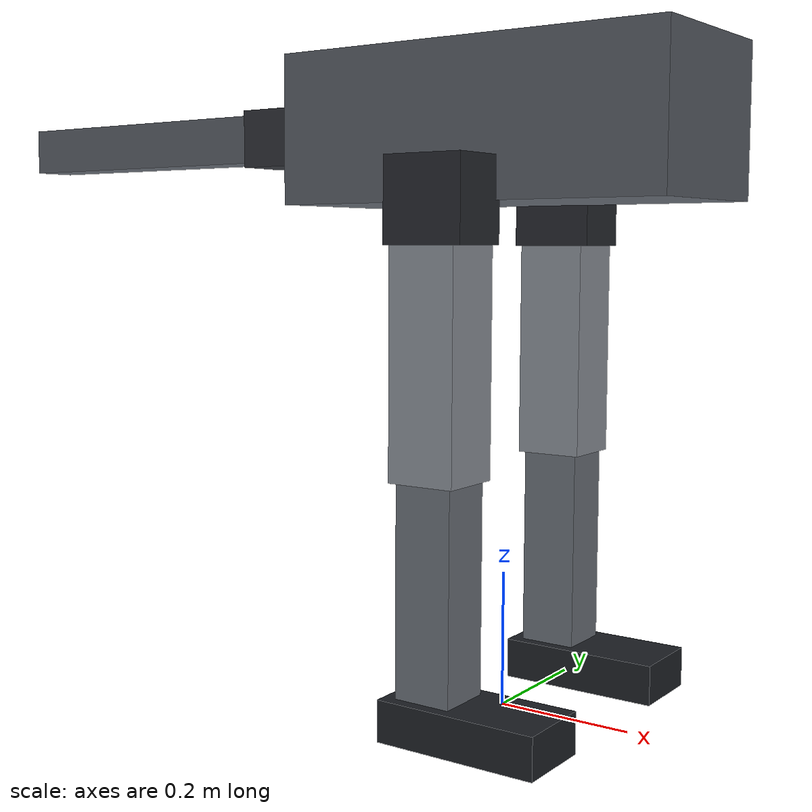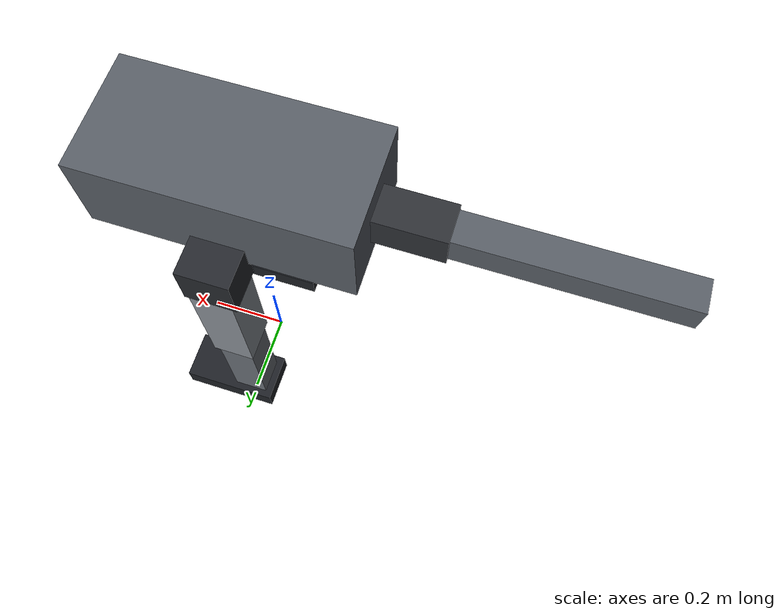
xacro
<?xml version="1.0"?>

<robot
  xmlns:xacro="http://www.ros.org/wiki/xacro"
  name="raptor">

  <!-- Bench fixture is explicitly opt-in and never a standing validation. -->
  <xacro:arg name="test_fixture" default="false"/>
  <xacro:arg name="detailed_visuals" default="false"/>
  <xacro:arg name="sensors" default="false"/>
  <xacro:arg name="passive_toes" default="false"/>
  <xacro:arg name="toe_stiffness_scale" default="1.0"/>
  <xacro:property name="toe_stiffness_scale" value="$(arg toe_stiffness_scale)"/>
  <xacro:arg name="crouched_start" default="false"/>
  <xacro:arg name="crouch_hip_pitch" default="-0.15"/>
  <xacro:property name="crouch_hip" value="$(arg crouch_hip_pitch)"/>
  <!-- Leg proportions (m). Link inertias below are still literal values for these lengths. -->
  <xacro:arg name="leg_design" default="legacy"/>
  <!-- Unknown values fail with a KeyError instead of silently picking a design. -->
  <xacro:property name="legacy" value="${dict(legacy=True, digitigrade=False, digitigrade_low=False)['$(arg leg_design)']}"/>
  <xacro:property name="low" value="${'$(arg leg_design)' == 'digitigrade_low'}"/>
  <!-- ankle_roll (digitigrade designs only): adds left/right ankle roll, 12 active DOF (user decision
       2026-09-29). Off by default so the 10-DOF evidence stays reproducible. -->
  <xacro:arg name="ankle_roll" default="false"/>
  <xacro:property name="ankle_roll" value="${'$(arg ankle_roll)' == 'true'}"/>
  <xacro:property name="ankle_roll_limit" value="0.50"/>
  <xacro:arg name="sole_shape" default="flat"/>
  <xacro:property name="sole_shape" value="${dict(flat='flat', rocker='rocker')['$(arg sole_shape)']}"/>
  <xacro:if value="${ankle_roll and legacy}"><xacro:ERROR_ankle_roll_needs_a_digitigrade_leg_design/></xacro:if>
  <xacro:property name="hip_drop" value="${0.06 if low else 0.12}"/>
  <xacro:arg name="ankle_pitch_limit" default="0"/>
  <xacro:property name="ankle_limit" value="${float('$(arg ankle_pitch_limit)') if float('$(arg ankle_pitch_limit)') > 0 else (0.95 if low else 0.70)}"/>
  <xacro:property name="toe_splay" value="${0.35 if low else 0.12}"/>
  <xacro:property name="thigh_length" value="${0.32 if legacy else 0.26}"/>
  <xacro:property name="shin_length" value="0.30"/>
  <!-- Legacy inertias are the original literals; digitigrade uses the box formula. -->
  <xacro:property name="thigh_ixx" value="${0.0140 if legacy else 1.5*(0.10**2+thigh_length**2)/12}"/>
  <!-- Tail link: legacy 0.50 m; digitigrade 0.95 m (longer, slimmer, same 0.8 kg; COM moves ~1 cm aft). -->
  <xacro:property name="tail_length" value="${0.50 if legacy else 0.95}"/>
  <xacro:property name="tail_width" value="${0.075 if legacy else 0.065}"/>
  <xacro:property name="tail_ixx" value="${0.0008 if legacy else 0.8*2*tail_width**2/12}"/>
  <xacro:property name="tail_iyy" value="${0.0169 if legacy else 0.8*(tail_length**2+tail_width**2)/12}"/>
  <xacro:property name="shin_ixx" value="${0.0089 if legacy else 1.1*(0.085**2+shin_length**2)/12}"/>
  <!-- Legacy thigh/shin meshes fit only the legacy lengths. -->
  <xacro:property name="detailed" value="${'$(arg detailed_visuals)' == 'true'}"/>
  <!-- legacy_detail: original DAE visuals. dg_detail: per-link Morphloom GLBs (modeling/morphloom). -->
  <xacro:property name="legacy_detail" value="${detailed and legacy}"/>
  <xacro:property name="dg_detail" value="${detailed and not legacy}"/>
  <xacro:macro name="dg_visual" params="link">
    <xacro:if value="${dg_detail}"><visual><origin rpy="${pi/2} 0 0"/><geometry><mesh filename="package://raptor_description/meshes/${'digitigrade_low' if low else 'digitigrade'}/${link}.glb"/></geometry></visual></xacro:if>
  </xacro:macro>
  <xacro:include filename="passive_toes.xacro"/>
  <xacro:include filename="digitigrade_foot.xacro"/>
  <!-- crouched_start knee; the ankle keeps the sole level (hip + knee + ankle = 0). -->
  <xacro:property name="crouch_knee" value="${0.4 if legacy else (1.65 if low else 0.5)}"/>
  <xacro:if value="$(arg sensors)">
    <gazebo reference="base_link">
      <sensor name="body_imu" type="imu">
        <always_on>true</always_on><update_rate>50</update_rate>
        <topic>/raptor/imu</topic>
        <imu><orientation_reference_frame><localization>ENU</localization></orientation_reference_frame></imu>
      </sensor>
      <sensor name="front_rgbd" type="rgbd_camera">
        <pose>0.42 0 0.04 0 0 0</pose>
        <always_on>true</always_on><update_rate>5</update_rate>
        <topic>/raptor/camera</topic>
        <camera>
          <horizontal_fov>1.05</horizontal_fov>
          <image><width>320</width><height>240</height><format>R8G8B8</format></image>
          <clip><near>0.05</near><far>20</far></clip>
          <depth_camera><clip><near>0.05</near><far>20</far></clip></depth_camera>
        </camera>
      </sensor>
    </gazebo>
    <xacro:macro name="foot_contact" params="side">
      <gazebo reference="${side}_foot_link">
        <sensor name="${side}_foot_contact" type="contact">
          <always_on>true</always_on><update_rate>50</update_rate>
          <topic>/raptor/${side}_foot/contact</topic>
          <contact>
            <collision>${side}_foot_link_collision</collision>
            <topic>/raptor/${side}_foot/contact</topic>
          </contact>
        </sensor>
      </gazebo>
    </xacro:macro>
    <xacro:foot_contact side="left"/><xacro:foot_contact side="right"/>
  </xacro:if>
  <xacro:if value="$(arg test_fixture)">
    <link name="world"/>
    <joint name="test_fixture_joint" type="fixed">
      <parent link="world"/><child link="base_root"/>
      <origin xyz="0 0 0.25"/>
    </joint>
  </xacro:if>

    <!-- Dummy root link for KDL -->
  <link name="base_root"/>

  <joint name="base_root_joint" type="fixed">
    <parent link="base_root"/>
    <child link="base_link"/>
    <origin xyz="0 0 0.85" rpy="0 0 0"/>
  </joint>

  <!--
    Raptor prototype
    Step 1: body only
  -->

  <link name="base_link">
    <xacro:dg_visual link="base_link"/>

    <!-- 화면에 보이는 외형 -->
    <xacro:unless value="${detailed}"><visual>
      <origin xyz="0 0 0" rpy="0 0 0"/>

      <geometry>
        <box size="0.60 0.28 0.22"/>
      </geometry>

      <material name="body_gray">
        <color rgba="0.35 0.37 0.40 1.0"/>
      </material>
    </visual></xacro:unless>
    <xacro:if value="${legacy_detail}">
      <visual><geometry><mesh filename="package://raptor_description/meshes/raptor/base_link__graphite.dae"/></geometry><material name="raptor_graphite"><color rgba="0.065 0.075 0.085 1"/></material></visual>
      <visual><geometry><mesh filename="package://raptor_description/meshes/raptor/base_link__titanium.dae"/></geometry><material name="raptor_titanium"><color rgba="0.36 0.4 0.43 1"/></material></visual>
      <visual><geometry><mesh filename="package://raptor_description/meshes/raptor/base_link__ivory.dae"/></geometry><material name="raptor_ivory"><color rgba="0.72 0.72 0.65 1"/></material></visual>
      <visual><geometry><mesh filename="package://raptor_description/meshes/raptor/base_link__copper.dae"/></geometry><material name="raptor_copper"><color rgba="0.66 0.29 0.08 1"/></material></visual>
      <visual><geometry><mesh filename="package://raptor_description/meshes/raptor/base_link__rubber.dae"/></geometry><material name="raptor_rubber"><color rgba="0.025 0.028 0.032 1"/></material></visual>
      <visual><geometry><mesh filename="package://raptor_description/meshes/raptor/base_link__lens.dae"/></geometry><material name="raptor_lens"><color rgba="0.05 0.26 0.33 1"/></material></visual>
    </xacro:if>

    <!-- Gazebo가 충돌 계산할 때 사용하는 모양 -->
    <collision>
      <origin xyz="0 0 0" rpy="0 0 0"/>

      <geometry>
        <box size="0.60 0.28 0.22"/>
      </geometry>
    </collision>

    <!-- 무게와 회전 특성 -->
    <inertial>
      <origin xyz="0 0 0" rpy="0 0 0"/>

      <mass value="8.0"/>

      <inertia
        ixx="0.0843"
        ixy="0.0"
        ixz="0.0"
        iyy="0.2691"
        iyz="0.0"
        izz="0.2923"/>
    </inertial>

    </link>
    <!-- LEFT HIP ROLL -->
    <!-- 다리를 좌우로 벌리고 모으는 첫 번째 관절 -->

    <link name="left_hip_roll_link">
    <xacro:dg_visual link="left_hip_roll_link"/>

    <xacro:unless value="${detailed}"><visual>
      <origin xyz="0 0 -0.06" rpy="0 0 0"/>

      <geometry>
        <box size="0.12 0.10 0.12"/>
      </geometry>

      <material name="joint_dark">
        <color rgba="0.15 0.16 0.18 1.0"/>
      </material>
    </visual></xacro:unless>
    <xacro:if value="${legacy_detail}">
      <visual><geometry><mesh filename="package://raptor_description/meshes/raptor/left_hip_roll_link__graphite.dae"/></geometry><material name="raptor_graphite"><color rgba="0.065 0.075 0.085 1"/></material></visual>
      <visual><geometry><mesh filename="package://raptor_description/meshes/raptor/left_hip_roll_link__titanium.dae"/></geometry><material name="raptor_titanium"><color rgba="0.36 0.4 0.43 1"/></material></visual>
      <visual><geometry><mesh filename="package://raptor_description/meshes/raptor/left_hip_roll_link__ivory.dae"/></geometry><material name="raptor_ivory"><color rgba="0.72 0.72 0.65 1"/></material></visual>
    </xacro:if>

    <collision>
      <origin xyz="0 0 -0.06" rpy="0 0 0"/>

      <geometry>
        <box size="0.12 0.10 0.12"/>
      </geometry>
    </collision>

    <inertial>
      <origin xyz="0 0 -0.06" rpy="0 0 0"/>

      <mass value="0.8"/>

      <inertia
        ixx="0.0016"
        ixy="0.0"
        ixz="0.0"
        iyy="0.0016"
        iyz="0.0"
        izz="0.0013"/>
    </inertial>

  </link>

  <joint name="left_hip_roll_joint" type="revolute">

    <parent link="base_link"/>
    <child link="left_hip_roll_link"/>

    <!-- 몸통 왼쪽 아래에 관절 배치 -->
    <origin xyz="0 0.18 -0.05" rpy="0 0 0"/>

    <!-- X축 회전 = Hip Roll -->
    <axis xyz="1 0 0"/>

    <limit
      lower="-0.50"
      upper="0.50"
      effort="80"
      velocity="2.0"/>

  </joint>
  <!-- LEFT HIP PITCH + THIGH -->
  <!-- 다리를 앞뒤로 움직이는 두 번째 관절 -->

  <link name="left_thigh_link">
    <xacro:dg_visual link="left_thigh_link"/>

    <xacro:unless value="${detailed}"><visual>
      <!-- 관절에서 아래쪽으로 허벅지가 내려감 -->
      <origin xyz="0 0 ${-thigh_length/2}" rpy="0 0 0"/>

      <geometry>
        <box size="0.10 0.10 ${thigh_length}"/>
      </geometry>

      <material name="leg_gray">
        <color rgba="0.55 0.57 0.60 1.0"/>
      </material>
    </visual></xacro:unless>
    <xacro:if value="${legacy_detail}">
      <visual><geometry><mesh filename="package://raptor_description/meshes/raptor/left_thigh_link__graphite.dae"/></geometry><material name="raptor_graphite"><color rgba="0.065 0.075 0.085 1"/></material></visual>
      <visual><geometry><mesh filename="package://raptor_description/meshes/raptor/left_thigh_link__titanium.dae"/></geometry><material name="raptor_titanium"><color rgba="0.36 0.4 0.43 1"/></material></visual>
      <visual><geometry><mesh filename="package://raptor_description/meshes/raptor/left_thigh_link__ivory.dae"/></geometry><material name="raptor_ivory"><color rgba="0.72 0.72 0.65 1"/></material></visual>
      <visual><geometry><mesh filename="package://raptor_description/meshes/raptor/left_thigh_link__copper.dae"/></geometry><material name="raptor_copper"><color rgba="0.66 0.29 0.08 1"/></material></visual>
    </xacro:if>

    <collision>
      <origin xyz="0 0 ${-thigh_length/2}" rpy="0 0 0"/>

      <geometry>
        <box size="0.10 0.10 ${thigh_length}"/>
      </geometry>
    </collision>

    <inertial>
      <origin xyz="0 0 ${-thigh_length/2}" rpy="0 0 0"/>

      <mass value="1.5"/>

      <inertia
        ixx="${thigh_ixx}"
        ixy="0.0"
        ixz="0.0"
        iyy="${thigh_ixx}"
        iyz="0.0"
        izz="0.0025"/>
    </inertial>

  </link>

  <joint name="left_hip_pitch_joint" type="revolute">

    <parent link="left_hip_roll_link"/>
    <child link="left_thigh_link"/>

    <!-- Hip Roll 블록 아래쪽에 Hip Pitch 배치 -->
    <origin xyz="0 0 ${-hip_drop}" rpy="0 0 0"/>

    <!-- Y축 회전 = 다리 앞뒤 움직임 -->
    <axis xyz="0 1 0"/>

    <limit
      lower="-1.20"
      upper="0.80"
      effort="100"
      velocity="2.5"/>

  </joint>
  <!-- LEFT KNEE PITCH + SHIN -->
  <!-- 무릎을 굽히고 펴는 세 번째 관절 -->

  <link name="left_shin_link">
    <xacro:dg_visual link="left_shin_link"/>

    <xacro:unless value="${detailed}"><visual>
      <!-- 무릎 아래로 종아리가 내려감 -->
      <origin xyz="0 0 ${-shin_length/2}" rpy="0 0 0"/>

      <geometry>
        <box size="0.085 0.085 ${shin_length}"/>
      </geometry>

      <material name="shin_gray">
        <color rgba="0.42 0.44 0.47 1.0"/>
      </material>
    </visual></xacro:unless>
    <xacro:if value="${legacy_detail}">
      <visual><geometry><mesh filename="package://raptor_description/meshes/raptor/left_shin_link__graphite.dae"/></geometry><material name="raptor_graphite"><color rgba="0.065 0.075 0.085 1"/></material></visual>
      <visual><geometry><mesh filename="package://raptor_description/meshes/raptor/left_shin_link__titanium.dae"/></geometry><material name="raptor_titanium"><color rgba="0.36 0.4 0.43 1"/></material></visual>
      <visual><geometry><mesh filename="package://raptor_description/meshes/raptor/left_shin_link__ivory.dae"/></geometry><material name="raptor_ivory"><color rgba="0.72 0.72 0.65 1"/></material></visual>
    </xacro:if>

    <collision>
      <origin xyz="0 0 ${-shin_length/2}" rpy="0 0 0"/>

      <geometry>
        <box size="0.085 0.085 ${shin_length}"/>
      </geometry>
    </collision>

    <inertial>
      <origin xyz="0 0 ${-shin_length/2}" rpy="0 0 0"/>

      <mass value="1.1"/>

      <inertia
        ixx="${shin_ixx}"
        ixy="0.0"
        ixz="0.0"
        iyy="${shin_ixx}"
        iyz="0.0"
        izz="0.0013"/>
    </inertial>

  </link>

  <joint name="left_knee_pitch_joint" type="revolute">

    <parent link="left_thigh_link"/>
    <child link="left_shin_link"/>

    <!-- 허벅지 끝 = 무릎 위치 -->
    <origin xyz="0 0 ${-thigh_length}" rpy="0 0 0"/>

    <!-- Y축 회전 = 무릎 굽힘 -->
    <axis xyz="0 1 0"/>

    <!--
      0 rad = 다리를 편 상태
      약 126도까지 굽힘 허용
    -->
    <limit
      lower="0.0"
      upper="2.20"
      effort="120"
      velocity="3.0"/>

  </joint>
  <!-- LEFT ANKLE PITCH + FOOT -->
  <!-- 발목을 앞뒤로 움직이는 네 번째 관절 -->

  <xacro:if value="${legacy}">
  <xacro:unless value="$(arg passive_toes)">
  <link name="left_foot_link">

    <xacro:unless value="${detailed}"><visual>
      <!-- 발목 기준으로 발을 약간 앞으로 배치 -->
      <origin xyz="0.06 0 -0.03" rpy="0 0 0"/>

      <geometry>
        <box size="0.24 0.12 0.06"/>
      </geometry>

      <material name="foot_dark">
        <color rgba="0.12 0.13 0.15 1.0"/>
      </material>
    </visual></xacro:unless>
    <xacro:if value="${legacy_detail}">
      <visual><geometry><mesh filename="package://raptor_description/meshes/raptor/left_foot_link__graphite.dae"/></geometry><material name="raptor_graphite"><color rgba="0.065 0.075 0.085 1"/></material></visual>
      <visual><geometry><mesh filename="package://raptor_description/meshes/raptor/left_foot_link__titanium.dae"/></geometry><material name="raptor_titanium"><color rgba="0.36 0.4 0.43 1"/></material></visual>
      <visual><geometry><mesh filename="package://raptor_description/meshes/raptor/left_foot_link__ivory.dae"/></geometry><material name="raptor_ivory"><color rgba="0.72 0.72 0.65 1"/></material></visual>
      <visual><geometry><mesh filename="package://raptor_description/meshes/raptor/left_foot_link__rubber.dae"/></geometry><material name="raptor_rubber"><color rgba="0.025 0.028 0.032 1"/></material></visual>
    </xacro:if>

    <collision>
      <origin xyz="0.06 0 -0.03" rpy="0 0 0"/>

      <geometry>
        <box size="0.24 0.12 0.06"/>
      </geometry>
    </collision>

    <inertial>
      <origin xyz="0.06 0 -0.03" rpy="0 0 0"/>

      <mass value="0.6"/>

      <inertia
        ixx="0.0009"
        ixy="0.0"
        ixz="0.0"
        iyy="0.0031"
        iyz="0.0"
        izz="0.0036"/>
    </inertial>

  </link>
  </xacro:unless>
  <xacro:if value="$(arg passive_toes)"><xacro:passive_foot side="left"/></xacro:if>
  </xacro:if>
  <xacro:unless value="${legacy}"><xacro:digitigrade_foot side="left" passive="$(arg passive_toes)"/></xacro:unless>

  <joint name="left_ankle_pitch_joint" type="revolute">

    <parent link="left_shin_link"/>
    <child link="${'left_metatarsus_link' if ankle_roll else 'left_foot_link'}"/>

    <!-- 종아리 끝부분에 발목 배치 -->
    <origin xyz="0 0 ${-shin_length}" rpy="0 0 0"/>

    <!-- Y축 회전 = 발 앞뒤 기울임 -->
    <axis xyz="0 1 0"/>

    <limit
      lower="${-ankle_limit}"
      upper="${ankle_limit}"
      effort="80"
      velocity="2.5"/>

  </joint>
  <!-- RIGHT LEG : 4 DOF                                     -->
  <!-- Hip Roll + Hip Pitch + Knee Pitch + Ankle Pitch       -->

  <!-- 1. RIGHT HIP ROLL LINK -->

  <link name="right_hip_roll_link">
    <xacro:dg_visual link="right_hip_roll_link"/>

    <xacro:unless value="${detailed}"><visual>
      <origin xyz="0 0 -0.06" rpy="0 0 0"/>

      <geometry>
        <box size="0.12 0.10 0.12"/>
      </geometry>

      <material name="right_joint_dark">
        <color rgba="0.15 0.16 0.18 1.0"/>
      </material>
    </visual></xacro:unless>
    <xacro:if value="${legacy_detail}">
      <visual><geometry><mesh filename="package://raptor_description/meshes/raptor/right_hip_roll_link__graphite.dae"/></geometry><material name="raptor_graphite"><color rgba="0.065 0.075 0.085 1"/></material></visual>
      <visual><geometry><mesh filename="package://raptor_description/meshes/raptor/right_hip_roll_link__titanium.dae"/></geometry><material name="raptor_titanium"><color rgba="0.36 0.4 0.43 1"/></material></visual>
      <visual><geometry><mesh filename="package://raptor_description/meshes/raptor/right_hip_roll_link__ivory.dae"/></geometry><material name="raptor_ivory"><color rgba="0.72 0.72 0.65 1"/></material></visual>
    </xacro:if>

    <collision>
      <origin xyz="0 0 -0.06" rpy="0 0 0"/>

      <geometry>
        <box size="0.12 0.10 0.12"/>
      </geometry>
    </collision>

    <inertial>
      <origin xyz="0 0 -0.06" rpy="0 0 0"/>

      <mass value="0.8"/>

      <inertia
        ixx="0.0016"
        ixy="0.0"
        ixz="0.0"
        iyy="0.0016"
        iyz="0.0"
        izz="0.0013"/>
    </inertial>

  </link>

  <joint name="right_hip_roll_joint" type="revolute">

    <parent link="base_link"/>
    <child link="right_hip_roll_link"/>

    <!-- 오른쪽은 Y 음수 방향 -->
    <origin xyz="0 -0.18 -0.05" rpy="0 0 0"/>

    <!--
      오른쪽은 왼쪽과 반대 방향의 X축을 사용.
      따라서 양쪽에서 +값을 줬을 때 다리가 바깥으로 벌어지게 함.
    -->
    <axis xyz="-1 0 0"/>

    <limit
      lower="-0.50"
      upper="0.50"
      effort="80"
      velocity="2.0"/>

  </joint>

  <!-- 2. RIGHT HIP PITCH + THIGH -->

  <link name="right_thigh_link">
    <xacro:dg_visual link="right_thigh_link"/>

    <xacro:unless value="${detailed}"><visual>
      <origin xyz="0 0 ${-thigh_length/2}" rpy="0 0 0"/>

      <geometry>
        <box size="0.10 0.10 ${thigh_length}"/>
      </geometry>

      <material name="right_leg_gray">
        <color rgba="0.55 0.57 0.60 1.0"/>
      </material>
    </visual></xacro:unless>
    <xacro:if value="${legacy_detail}">
      <visual><geometry><mesh filename="package://raptor_description/meshes/raptor/right_thigh_link__graphite.dae"/></geometry><material name="raptor_graphite"><color rgba="0.065 0.075 0.085 1"/></material></visual>
      <visual><geometry><mesh filename="package://raptor_description/meshes/raptor/right_thigh_link__titanium.dae"/></geometry><material name="raptor_titanium"><color rgba="0.36 0.4 0.43 1"/></material></visual>
      <visual><geometry><mesh filename="package://raptor_description/meshes/raptor/right_thigh_link__ivory.dae"/></geometry><material name="raptor_ivory"><color rgba="0.72 0.72 0.65 1"/></material></visual>
      <visual><geometry><mesh filename="package://raptor_description/meshes/raptor/right_thigh_link__copper.dae"/></geometry><material name="raptor_copper"><color rgba="0.66 0.29 0.08 1"/></material></visual>
    </xacro:if>

    <collision>
      <origin xyz="0 0 ${-thigh_length/2}" rpy="0 0 0"/>

      <geometry>
        <box size="0.10 0.10 ${thigh_length}"/>
      </geometry>
    </collision>

    <inertial>
      <origin xyz="0 0 ${-thigh_length/2}" rpy="0 0 0"/>

      <mass value="1.5"/>

      <inertia
        ixx="${thigh_ixx}"
        ixy="0.0"
        ixz="0.0"
        iyy="${thigh_ixx}"
        iyz="0.0"
        izz="0.0025"/>
    </inertial>

  </link>

  <joint name="right_hip_pitch_joint" type="revolute">

    <parent link="right_hip_roll_link"/>
    <child link="right_thigh_link"/>

    <origin xyz="0 0 ${-hip_drop}" rpy="0 0 0"/>

    <axis xyz="0 1 0"/>

    <limit
      lower="-1.20"
      upper="0.80"
      effort="100"
      velocity="2.5"/>

  </joint>

  <!-- 3. RIGHT KNEE PITCH + SHIN -->

  <link name="right_shin_link">
    <xacro:dg_visual link="right_shin_link"/>

    <xacro:unless value="${detailed}"><visual>
      <origin xyz="0 0 ${-shin_length/2}" rpy="0 0 0"/>

      <geometry>
        <box size="0.085 0.085 ${shin_length}"/>
      </geometry>

      <material name="right_shin_gray">
        <color rgba="0.42 0.44 0.47 1.0"/>
      </material>
    </visual></xacro:unless>
    <xacro:if value="${legacy_detail}">
      <visual><geometry><mesh filename="package://raptor_description/meshes/raptor/right_shin_link__graphite.dae"/></geometry><material name="raptor_graphite"><color rgba="0.065 0.075 0.085 1"/></material></visual>
      <visual><geometry><mesh filename="package://raptor_description/meshes/raptor/right_shin_link__titanium.dae"/></geometry><material name="raptor_titanium"><color rgba="0.36 0.4 0.43 1"/></material></visual>
      <visual><geometry><mesh filename="package://raptor_description/meshes/raptor/right_shin_link__ivory.dae"/></geometry><material name="raptor_ivory"><color rgba="0.72 0.72 0.65 1"/></material></visual>
    </xacro:if>

    <collision>
      <origin xyz="0 0 ${-shin_length/2}" rpy="0 0 0"/>

      <geometry>
        <box size="0.085 0.085 ${shin_length}"/>
      </geometry>
    </collision>

    <inertial>
      <origin xyz="0 0 ${-shin_length/2}" rpy="0 0 0"/>

      <mass value="1.1"/>

      <inertia
        ixx="${shin_ixx}"
        ixy="0.0"
        ixz="0.0"
        iyy="${shin_ixx}"
        iyz="0.0"
        izz="0.0013"/>
    </inertial>

  </link>

  <joint name="right_knee_pitch_joint" type="revolute">

    <parent link="right_thigh_link"/>
    <child link="right_shin_link"/>

    <origin xyz="0 0 ${-thigh_length}" rpy="0 0 0"/>

    <axis xyz="0 1 0"/>

    <limit
      lower="0.0"
      upper="2.20"
      effort="120"
      velocity="3.0"/>

  </joint>

  <!-- 4. RIGHT ANKLE PITCH + FOOT -->

  <xacro:if value="${legacy}">
  <xacro:unless value="$(arg passive_toes)">
  <link name="right_foot_link">

    <xacro:unless value="${detailed}"><visual>
      <origin xyz="0.06 0 -0.03" rpy="0 0 0"/>

      <geometry>
        <box size="0.24 0.12 0.06"/>
      </geometry>

      <material name="right_foot_dark">
        <color rgba="0.12 0.13 0.15 1.0"/>
      </material>
    </visual></xacro:unless>
    <xacro:if value="${legacy_detail}">
      <visual><geometry><mesh filename="package://raptor_description/meshes/raptor/right_foot_link__graphite.dae"/></geometry><material name="raptor_graphite"><color rgba="0.065 0.075 0.085 1"/></material></visual>
      <visual><geometry><mesh filename="package://raptor_description/meshes/raptor/right_foot_link__titanium.dae"/></geometry><material name="raptor_titanium"><color rgba="0.36 0.4 0.43 1"/></material></visual>
      <visual><geometry><mesh filename="package://raptor_description/meshes/raptor/right_foot_link__ivory.dae"/></geometry><material name="raptor_ivory"><color rgba="0.72 0.72 0.65 1"/></material></visual>
      <visual><geometry><mesh filename="package://raptor_description/meshes/raptor/right_foot_link__rubber.dae"/></geometry><material name="raptor_rubber"><color rgba="0.025 0.028 0.032 1"/></material></visual>
    </xacro:if>

    <collision>
      <origin xyz="0.06 0 -0.03" rpy="0 0 0"/>

      <geometry>
        <box size="0.24 0.12 0.06"/>
      </geometry>
    </collision>

    <inertial>
      <origin xyz="0.06 0 -0.03" rpy="0 0 0"/>

      <mass value="0.6"/>

      <inertia
        ixx="0.0009"
        ixy="0.0"
        ixz="0.0"
        iyy="0.0031"
        iyz="0.0"
        izz="0.0036"/>
    </inertial>

  </link>
  </xacro:unless>
  <xacro:if value="$(arg passive_toes)"><xacro:passive_foot side="right"/></xacro:if>
  </xacro:if>
  <xacro:unless value="${legacy}"><xacro:digitigrade_foot side="right" passive="$(arg passive_toes)"/></xacro:unless>

  <joint name="right_ankle_pitch_joint" type="revolute">

    <parent link="right_shin_link"/>
    <child link="${'right_metatarsus_link' if ankle_roll else 'right_foot_link'}"/>

    <origin xyz="0 0 ${-shin_length}" rpy="0 0 0"/>

    <axis xyz="0 1 0"/>

    <limit
      lower="${-ankle_limit}"
      upper="${ankle_limit}"
      effort="80"
      velocity="2.5"/>

  </joint>
  <!-- TAIL : 2 DOF                                         -->
  <!-- Tail Yaw + Tail Pitch                                 -->

  <!-- 9. TAIL YAW LINK -->
  <!-- 몸통 뒤쪽에서 좌우로 회전하는 꼬리 베이스 -->

  <link name="tail_yaw_link">
    <xacro:dg_visual link="tail_yaw_link"/>

    <xacro:unless value="${detailed}"><visual>
      <!-- 관절 기준 뒤쪽(-X)으로 꼬리 베이스가 뻗음 -->
      <origin xyz="-0.08 0 0" rpy="0 0 0"/>

      <geometry>
        <box size="0.16 0.09 0.09"/>
      </geometry>

      <material name="tail_dark">
        <color rgba="0.18 0.19 0.21 1.0"/>
      </material>
    </visual></xacro:unless>
    <xacro:if value="${legacy_detail}">
      <visual><geometry><mesh filename="package://raptor_description/meshes/raptor/tail_yaw_link__graphite.dae"/></geometry><material name="raptor_graphite"><color rgba="0.065 0.075 0.085 1"/></material></visual>
      <visual><geometry><mesh filename="package://raptor_description/meshes/raptor/tail_yaw_link__titanium.dae"/></geometry><material name="raptor_titanium"><color rgba="0.36 0.4 0.43 1"/></material></visual>
      <visual><geometry><mesh filename="package://raptor_description/meshes/raptor/tail_yaw_link__ivory.dae"/></geometry><material name="raptor_ivory"><color rgba="0.72 0.72 0.65 1"/></material></visual>
    </xacro:if>

    <collision>
      <origin xyz="-0.08 0 0" rpy="0 0 0"/>

      <geometry>
        <box size="0.16 0.09 0.09"/>
      </geometry>
    </collision>

    <inertial>
      <origin xyz="-0.08 0 0" rpy="0 0 0"/>

      <mass value="0.5"/>

      <inertia
        ixx="0.0007"
        ixy="0.0"
        ixz="0.0"
        iyy="0.0014"
        iyz="0.0"
        izz="0.0014"/>
    </inertial>

  </link>

  <joint name="tail_yaw_joint" type="revolute">

    <parent link="base_link"/>
    <child link="tail_yaw_link"/>

    <!-- 몸통 뒤쪽 끝에 꼬리 장착 -->
    <origin xyz="-0.30 0 0" rpy="0 0 0"/>

    <!-- Z축 회전 = 좌우 움직임 -->
    <axis xyz="0 0 1"/>

    <!-- 약 좌우 ±46도 -->
    <limit
      lower="-0.80"
      upper="0.80"
      effort="50"
      velocity="2.0"/>

  </joint>

  <!-- 10. TAIL PITCH + MAIN TAIL -->
  <!-- 꼬리를 위아래로 움직이는 관절 -->

  <link name="tail_link">
    <xacro:dg_visual link="tail_link"/>

    <xacro:unless value="${detailed}"><visual>
      <!-- Pitch 관절에서 뒤쪽으로 0.5m 뻗는 꼬리 -->
      <origin xyz="${-tail_length/2} 0 0" rpy="0 0 0"/>

      <geometry>
        <box size="${tail_length} ${tail_width} ${tail_width}"/>
      </geometry>

      <material name="tail_gray">
        <color rgba="0.35 0.37 0.40 1.0"/>
      </material>
    </visual></xacro:unless>
    <xacro:if value="${legacy_detail}">
      <visual><geometry><mesh filename="package://raptor_description/meshes/raptor/tail_link__graphite.dae"/></geometry><material name="raptor_graphite"><color rgba="0.065 0.075 0.085 1"/></material></visual>
      <visual><geometry><mesh filename="package://raptor_description/meshes/raptor/tail_link__titanium.dae"/></geometry><material name="raptor_titanium"><color rgba="0.36 0.4 0.43 1"/></material></visual>
      <visual><geometry><mesh filename="package://raptor_description/meshes/raptor/tail_link__ivory.dae"/></geometry><material name="raptor_ivory"><color rgba="0.72 0.72 0.65 1"/></material></visual>
      <visual><geometry><mesh filename="package://raptor_description/meshes/raptor/tail_link__copper.dae"/></geometry><material name="raptor_copper"><color rgba="0.66 0.29 0.08 1"/></material></visual>
    </xacro:if>

    <collision>
      <origin xyz="${-tail_length/2} 0 0" rpy="0 0 0"/>

      <geometry>
        <box size="${tail_length} ${tail_width} ${tail_width}"/>
      </geometry>
    </collision>

    <inertial>
      <origin xyz="${-tail_length/2} 0 0" rpy="0 0 0"/>

      <mass value="0.8"/>

      <inertia
        ixx="${tail_ixx}"
        ixy="0.0"
        ixz="0.0"
        iyy="${tail_iyy}"
        iyz="0.0"
        izz="${tail_iyy}"/>
    </inertial>

  </link>

  <joint name="tail_pitch_joint" type="revolute">

    <parent link="tail_yaw_link"/>
    <child link="tail_link"/>

    <!-- 꼬리 베이스 끝 -->
    <origin xyz="-0.16 0 0" rpy="0 0 0"/>

    <!-- Y축 회전 = 위 / 아래 -->
    <axis xyz="0 1 0"/>

    <limit
      lower="-0.60"
      upper="0.60"
      effort="50"
      velocity="2.0"/>

  </joint>
  <!-- ROS 2 CONTROL : 10 DOF                                -->

  <ros2_control name="GazeboSimSystem" type="system">

    <hardware>
      <plugin>gz_ros2_control/GazeboSimSystem</plugin>
    </hardware>

    <!-- LEFT LEG -->

    <joint name="left_hip_roll_joint">
      <command_interface name="position"/>
      <state_interface name="position"/>
      <state_interface name="velocity"/>
      <state_interface name="effort"/>
    </joint>

    <joint name="left_hip_pitch_joint">
      <command_interface name="position"/>
      <state_interface name="position"><xacro:if value="$(arg crouched_start)"><param name="initial_value">${crouch_hip}</param></xacro:if></state_interface>
      <state_interface name="velocity"/>
      <state_interface name="effort"/>
    </joint>

    <joint name="left_knee_pitch_joint">
      <command_interface name="position"/>
      <state_interface name="position"><xacro:if value="$(arg crouched_start)"><param name="initial_value">${crouch_knee}</param></xacro:if></state_interface>
      <state_interface name="velocity"/>
      <state_interface name="effort"/>
    </joint>

    <joint name="left_ankle_pitch_joint">
      <command_interface name="position"/>
      <state_interface name="position"><xacro:if value="$(arg crouched_start)"><param name="initial_value">${-crouch_knee-crouch_hip}</param></xacro:if></state_interface>
      <state_interface name="velocity"/>
      <state_interface name="effort"/>
    </joint>
    <xacro:if value="${ankle_roll}">
    <joint name="left_ankle_roll_joint">
      <command_interface name="position"/>
      <state_interface name="position"/>
      <state_interface name="velocity"/>
      <state_interface name="effort"/>
    </joint>
    </xacro:if>

    <!-- RIGHT LEG -->

    <joint name="right_hip_roll_joint">
      <command_interface name="position"/>
      <state_interface name="position"/>
      <state_interface name="velocity"/>
      <state_interface name="effort"/>
    </joint>

    <joint name="right_hip_pitch_joint">
      <command_interface name="position"/>
      <state_interface name="position"><xacro:if value="$(arg crouched_start)"><param name="initial_value">${crouch_hip}</param></xacro:if></state_interface>
      <state_interface name="velocity"/>
      <state_interface name="effort"/>
    </joint>

    <joint name="right_knee_pitch_joint">
      <command_interface name="position"/>
      <state_interface name="position"><xacro:if value="$(arg crouched_start)"><param name="initial_value">${crouch_knee}</param></xacro:if></state_interface>
      <state_interface name="velocity"/>
      <state_interface name="effort"/>
    </joint>

    <joint name="right_ankle_pitch_joint">
      <command_interface name="position"/>
      <state_interface name="position"><xacro:if value="$(arg crouched_start)"><param name="initial_value">${-crouch_knee-crouch_hip}</param></xacro:if></state_interface>
      <state_interface name="velocity"/>
      <state_interface name="effort"/>
    </joint>
    <xacro:if value="${ankle_roll}">
    <joint name="right_ankle_roll_joint">
      <command_interface name="position"/>
      <state_interface name="position"/>
      <state_interface name="velocity"/>
      <state_interface name="effort"/>
    </joint>
    </xacro:if>

    <!-- TAIL -->

    <joint name="tail_yaw_joint">
      <command_interface name="position"/>
      <state_interface name="position"/>
      <state_interface name="velocity"/>
      <state_interface name="effort"/>
    </joint>

    <joint name="tail_pitch_joint">
      <command_interface name="position"/>
      <state_interface name="position"/>
      <state_interface name="velocity"/>
      <state_interface name="effort"/>
    </joint>

  </ros2_control>

  <!-- Gazebo ↔ ros2_control bridge -->

  <gazebo>

    <plugin
      filename="libgz_ros2_control-system.so"
      name="gz_ros2_control::GazeboSimROS2ControlPlugin">

      <parameters>
        $(find raptor_control)/config/${'controllers_ankle_roll.yaml' if ankle_roll else 'controllers.yaml'}
      </parameters>

      <!-- controller가 아직 안 잡은 관절도 현재 위치 유지 -->
      <hold_joints>true</hold_joints>

      <!-- position control 반응 강도 -->
      <position_proportional_gain>0.3</position_proportional_gain>

    </plugin>

  </gazebo>

  <xacro:if value="$(arg passive_toes)">
    <gazebo><plugin filename="gz-sim-joint-state-publisher-system" name="gz::sim::systems::JointStatePublisher">
      <topic>/raptor/passive_joint_states</topic><update_rate>50</update_rate>
      <joint_name>left_toe_1_proximal_joint</joint_name>
      <joint_name>left_toe_1_distal_joint</joint_name>
      <joint_name>left_toe_2_proximal_joint</joint_name>
      <joint_name>left_toe_2_distal_joint</joint_name>
      <joint_name>left_toe_3_proximal_joint</joint_name>
      <joint_name>left_toe_3_distal_joint</joint_name>
      <joint_name>right_toe_1_proximal_joint</joint_name>
      <joint_name>right_toe_1_distal_joint</joint_name>
      <joint_name>right_toe_2_proximal_joint</joint_name>
      <joint_name>right_toe_2_distal_joint</joint_name>
      <joint_name>right_toe_3_proximal_joint</joint_name>
      <joint_name>right_toe_3_distal_joint</joint_name>
    </plugin></gazebo>
  </xacro:if>
</robot>
